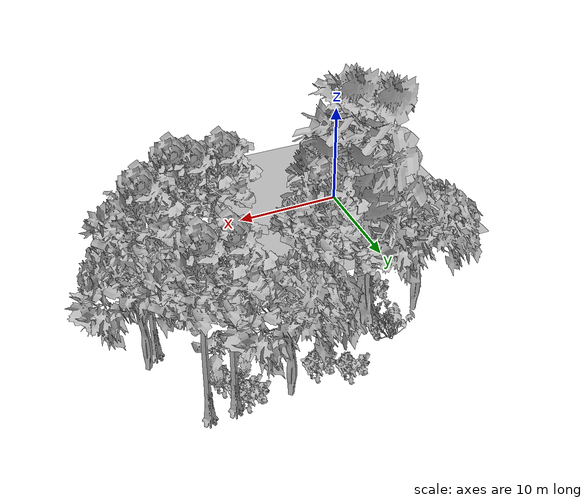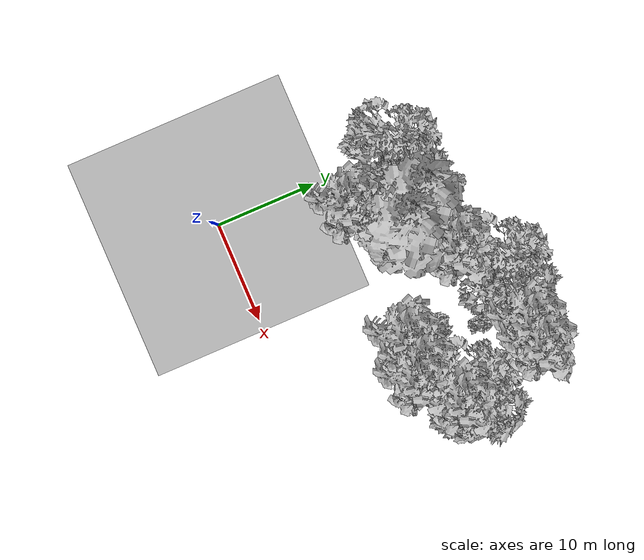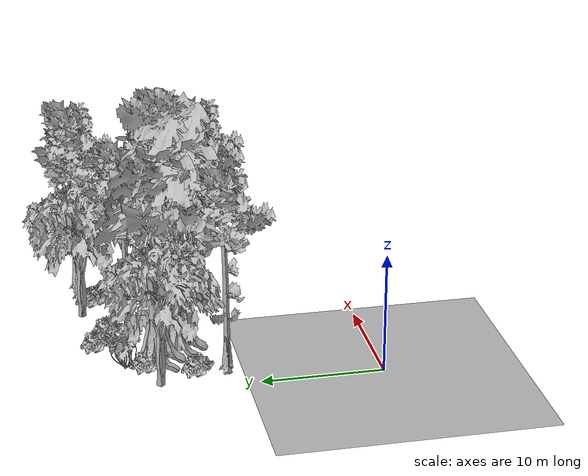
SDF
<sdf version="1.7">
 <world name="default">
  <model name="ground_plane">
   <static>1</static>
   <link name="link">
    <collision name="collision">
     <geometry><plane><normal>0 0 1</normal><size>100 100</size></plane></geometry>
     <surface><contact><ode><min_depth>0.01</min_depth><max_vel>0</max_vel></ode></contact></surface>
    </collision>
    <visual name="grass">
     <cast_shadows>0</cast_shadows>
     <geometry>
      <mesh>
       <scale>0.41000000000000003 0.41000000000000003 0.1</scale>
       <uri>file://grass_plane/meshes/grass_plane.dae</uri>
      </mesh>
     </geometry>
    </visual>
   </link>
  </model>
  <model name="Tree 13">
   <static>1</static>
   <pose>15.753740143780576 12.22474399532576 0 1.57079 -0 0</pose>
   <link name="link">
    <collision name="collision">
     <geometry><mesh><scale>5 5 5</scale><uri>model://tree_9/meshes/tree_9.obj</uri></mesh></geometry>
    </collision>
    <visual name="visual">
     <geometry><mesh><scale>5 5 5</scale><uri>model://tree_9/meshes/tree_9.obj</uri></mesh></geometry>
    </visual>
   </link>
  </model>
  <model name="Tree 93">
   <static>1</static>
   <pose>18.238228917331824 12.547364461600871 0 1.57079 -0 0</pose>
   <link name="link">
    <collision name="collision">
     <geometry><mesh><scale>5 5 5</scale><uri>model://tree_9/meshes/tree_9.obj</uri></mesh></geometry>
    </collision>
    <visual name="visual">
     <geometry><mesh><scale>5 5 5</scale><uri>model://tree_9/meshes/tree_9.obj</uri></mesh></geometry>
    </visual>
   </link>
  </model>
  <model name="Tree 111">
   <static>1</static>
   <pose>5.620349925173663 17.47855955346637 0 1.57079 -0 0</pose>
   <link name="link">
    <collision name="collision">
     <geometry><mesh><scale>5 5 5</scale><uri>model://tree_4/meshes/tree_4.obj</uri></mesh></geometry>
    </collision>
    <visual name="visual">
     <geometry><mesh><scale>5 5 5</scale><uri>model://tree_4/meshes/tree_4.obj</uri></mesh></geometry>
    </visual>
   </link>
  </model>
  <model name="Tree 117">
   <static>1</static>
   <pose>0.9161059431033536 17.77455166948812 0 1.57079 -0 0</pose>
   <link name="link">
    <collision name="collision">
     <geometry><mesh><scale>5 5 5</scale><uri>model://tree_2/meshes/tree_2.obj</uri></mesh></geometry>
    </collision>
    <visual name="visual">
     <geometry><mesh><scale>5 5 5</scale><uri>model://tree_2/meshes/tree_2.obj</uri></mesh></geometry>
    </visual>
   </link>
  </model>
  <model name="Tree 124">
   <static>1</static>
   <pose>22.537961622530887 14.502943493615689 0 1.57079 -0 0</pose>
   <link name="link">
    <collision name="collision">
     <geometry><mesh><scale>5 5 5</scale><uri>model://tree_9/meshes/tree_9.obj</uri></mesh></geometry>
    </collision>
    <visual name="visual">
     <geometry><mesh><scale>5 5 5</scale><uri>model://tree_9/meshes/tree_9.obj</uri></mesh></geometry>
    </visual>
   </link>
  </model>
  <model name="Tree 138">
   <static>1</static>
   <pose>23.376822282890174 15.78970278752962 0 1.57079 -0 0</pose>
   <link name="link">
    <collision name="collision">
     <geometry><mesh><scale>5 5 5</scale><uri>model://tree_2/meshes/tree_2.obj</uri></mesh></geometry>
    </collision>
    <visual name="visual">
     <geometry><mesh><scale>5 5 5</scale><uri>model://tree_2/meshes/tree_2.obj</uri></mesh></geometry>
    </visual>
   </link>
  </model>
  <model name="Tree 264">
   <static>1</static>
   <pose>14.210797839568265 22.644992830635744 0 1.57079 -0 0</pose>
   <link name="link">
    <collision name="collision">
     <geometry><mesh><scale>5 5 5</scale><uri>model://tree_2/meshes/tree_2.obj</uri></mesh></geometry>
    </collision>
    <visual name="visual">
     <geometry><mesh><scale>5 5 5</scale><uri>model://tree_2/meshes/tree_2.obj</uri></mesh></geometry>
    </visual>
   </link>
  </model>
  <model name="Tree 284">
   <static>1</static>
   <pose>3.377539293243487 12.111665372004211 0 1.57079 -0 0</pose>
   <link name="link">
    <collision name="collision">
     <geometry><mesh><scale>5 5 5</scale><uri>model://tree_9/meshes/tree_9.obj</uri></mesh></geometry>
    </collision>
    <visual name="visual">
     <geometry><mesh><scale>5 5 5</scale><uri>model://tree_9/meshes/tree_9.obj</uri></mesh></geometry>
    </visual>
   </link>
  </model>
  <model name="Tree 363">
   <static>1</static>
   <pose>10.420069227927776 19.2062418600609 0 1.57079 -0 0</pose>
   <link name="link">
    <collision name="collision">
     <geometry><mesh><scale>5 5 5</scale><uri>model://tree_9/meshes/tree_9.obj</uri></mesh></geometry>
    </collision>
    <visual name="visual">
     <geometry><mesh><scale>5 5 5</scale><uri>model://tree_9/meshes/tree_9.obj</uri></mesh></geometry>
    </visual>
   </link>
  </model>
  <model name="Tree 419">
   <static>1</static>
   <pose>20.804180576673104 22.540801937276726 0 1.57079 -0 0</pose>
   <link name="link">
    <collision name="collision">
     <geometry><mesh><scale>5 5 5</scale><uri>model://tree_9/meshes/tree_9.obj</uri></mesh></geometry>
    </collision>
    <visual name="visual">
     <geometry><mesh><scale>5 5 5</scale><uri>model://tree_9/meshes/tree_9.obj</uri></mesh></geometry>
    </visual>
   </link>
  </model>
  <model name="Tree 420">
   <static>1</static>
   <pose>18.732959338404797 22.46063817536472 0 1.57079 -0 0</pose>
   <link name="link">
    <collision name="collision">
     <geometry><mesh><scale>5 5 5</scale><uri>model://tree_9/meshes/tree_9.obj</uri></mesh></geometry>
    </collision>
    <visual name="visual">
     <geometry><mesh><scale>5 5 5</scale><uri>model://tree_9/meshes/tree_9.obj</uri></mesh></geometry>
    </visual>
   </link>
  </model>
  <model name="Tree 424">
   <static>1</static>
   <pose>7.385606925104582 15.416974417516599 0 1.57079 -0 0</pose>
   <link name="link">
    <collision name="collision">
     <geometry><mesh><scale>5 5 5</scale><uri>model://tree_4/meshes/tree_4.obj</uri></mesh></geometry>
    </collision>
    <visual name="visual">
     <geometry><mesh><scale>5 5 5</scale><uri>model://tree_4/meshes/tree_4.obj</uri></mesh></geometry>
    </visual>
   </link>
  </model>
  <model name="Tree 432">
   <static>1</static>
   <pose>5.615182099480066 17.19140006094551 0 1.57079 -0 0</pose>
   <link name="link">
    <collision name="collision">
     <geometry><mesh><scale>5 5 5</scale><uri>model://tree_9/meshes/tree_9.obj</uri></mesh></geometry>
    </collision>
    <visual name="visual">
     <geometry><mesh><scale>5 5 5</scale><uri>model://tree_9/meshes/tree_9.obj</uri></mesh></geometry>
    </visual>
   </link>
  </model>
  <model name="Tree 499">
   <static>1</static>
   <pose>19.40111171904566 11.60446776391781 0 1.57079 -0 0</pose>
   <link name="link">
    <collision name="collision">
     <geometry><mesh><scale>5 5 5</scale><uri>model://tree_9/meshes/tree_9.obj</uri></mesh></geometry>
    </collision>
    <visual name="visual">
     <geometry><mesh><scale>5 5 5</scale><uri>model://tree_9/meshes/tree_9.obj</uri></mesh></geometry>
    </visual>
   </link>
  </model>
  <model name="Bush 2">
   <static>1</static>
   <pose>8.821522886277144 22.008402052304305 0 1.57079 -0 0</pose>
   <link name="link">
    <collision name="collision">
     <geometry><mesh><scale>2 2 2</scale><uri>model://bush_2/meshes/bush_2.obj</uri></mesh></geometry>
    </collision>
    <visual name="visual">
     <geometry><mesh><scale>5 5 5</scale><uri>model://bush_2/meshes/bush_2.obj</uri></mesh></geometry>
    </visual>
   </link>
  </model>
  <model name="Bush 25">
   <static>1</static>
   <pose>4.5203284994952995 18.321325533675207 0 1.57079 -0 0</pose>
   <link name="link">
    <collision name="collision">
     <geometry><mesh><scale>2 2 2</scale><uri>model://bush_2/meshes/bush_2.obj</uri></mesh></geometry>
    </collision>
    <visual name="visual">
     <geometry><mesh><scale>5 5 5</scale><uri>model://bush_2/meshes/bush_2.obj</uri></mesh></geometry>
    </visual>
   </link>
  </model>
  <model name="Bush 29">
   <static>1</static>
   <pose>3.0979506243592283 14.5055607685904 0 1.57079 -0 0</pose>
   <link name="link">
    <collision name="collision">
     <geometry><mesh><scale>2 2 2</scale><uri>model://bush_2/meshes/bush_2.obj</uri></mesh></geometry>
    </collision>
    <visual name="visual">
     <geometry><mesh><scale>5 5 5</scale><uri>model://bush_2/meshes/bush_2.obj</uri></mesh></geometry>
    </visual>
   </link>
  </model>
  <model name="Bush 40">
   <static>1</static>
   <pose>18.299412950785637 19.479238175317192 0 1.57079 -0 0</pose>
   <link name="link">
    <collision name="collision">
     <geometry><mesh><scale>2 2 2</scale><uri>model://bush_2/meshes/bush_2.obj</uri></mesh></geometry>
    </collision>
    <visual name="visual">
     <geometry><mesh><scale>5 5 5</scale><uri>model://bush_2/meshes/bush_2.obj</uri></mesh></geometry>
    </visual>
   </link>
  </model>
  <model name="Bush 48">
   <static>1</static>
   <pose>11.148535048020918 20.849012971120885 0 1.57079 -0 0</pose>
   <link name="link">
    <collision name="collision">
     <geometry><mesh><scale>2 2 2</scale><uri>model://bush_2/meshes/bush_2.obj</uri></mesh></geometry>
    </collision>
    <visual name="visual">
     <geometry><mesh><scale>5 5 5</scale><uri>model://bush_2/meshes/bush_2.obj</uri></mesh></geometry>
    </visual>
   </link>
  </model>
  <model name="Bush 63">
   <static>1</static>
   <pose>17.109666561818273 21.646552953882008 0 1.57079 -0 0</pose>
   <link name="link">
    <collision name="collision">
     <geometry><mesh><scale>2 2 2</scale><uri>model://bush_2/meshes/bush_2.obj</uri></mesh></geometry>
    </collision>
    <visual name="visual">
     <geometry><mesh><scale>5 5 5</scale><uri>model://bush_2/meshes/bush_2.obj</uri></mesh></geometry>
    </visual>
   </link>
  </model>
  <model name="Bush 74">
   <static>1</static>
   <pose>17.48387055810744 20.76801929841271 0 1.57079 -0 0</pose>
   <link name="link">
    <collision name="collision">
     <geometry><mesh><scale>2 2 2</scale><uri>model://bush_2/meshes/bush_2.obj</uri></mesh></geometry>
    </collision>
    <visual name="visual">
     <geometry><mesh><scale>5 5 5</scale><uri>model://bush_2/meshes/bush_2.obj</uri></mesh></geometry>
    </visual>
   </link>
  </model>
  <model name="Bush 106">
   <static>1</static>
   <pose>17.307575146804695 15.65263348732347 0 1.57079 -0 0</pose>
   <link name="link">
    <collision name="collision">
     <geometry><mesh><scale>2 2 2</scale><uri>model://bush_2/meshes/bush_2.obj</uri></mesh></geometry>
    </collision>
    <visual name="visual">
     <geometry><mesh><scale>5 5 5</scale><uri>model://bush_2/meshes/bush_2.obj</uri></mesh></geometry>
    </visual>
   </link>
  </model>
  <model name="Bush 107">
   <static>1</static>
   <pose>4.565049850647277 20.14279790966394 0 1.57079 -0 0</pose>
   <link name="link">
    <collision name="collision">
     <geometry><mesh><scale>2 2 2</scale><uri>model://bush_4/meshes/bush_4.obj</uri></mesh></geometry>
    </collision>
    <visual name="visual">
     <geometry><mesh><scale>5 5 5</scale><uri>model://bush_4/meshes/bush_4.obj</uri></mesh></geometry>
    </visual>
   </link>
  </model>
 </world>
</sdf>
